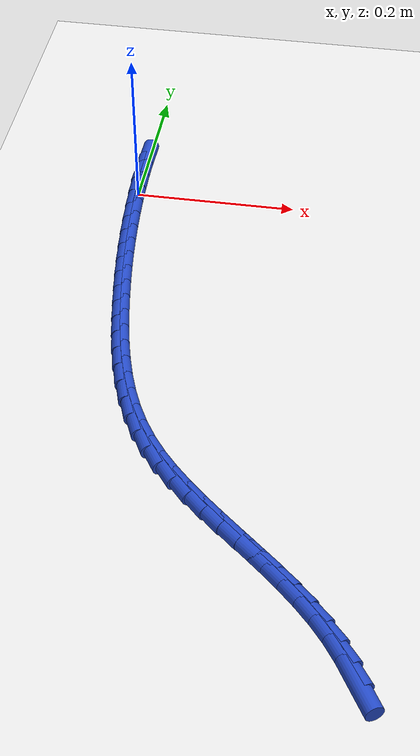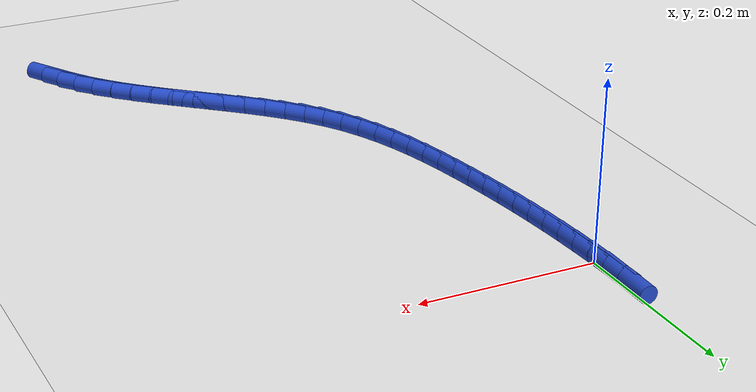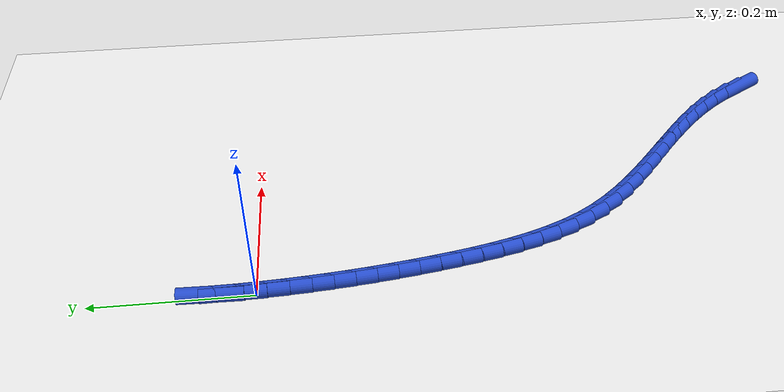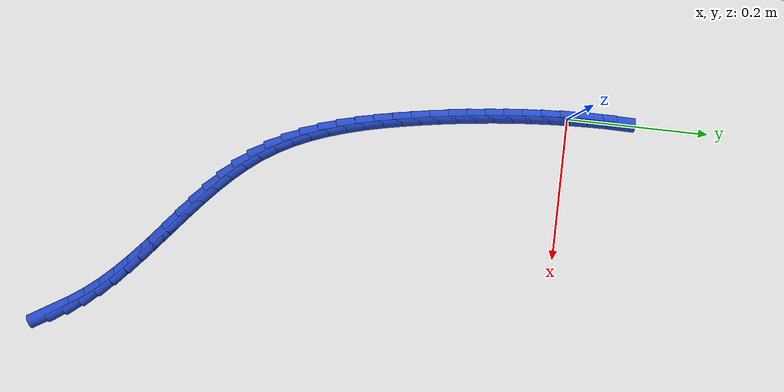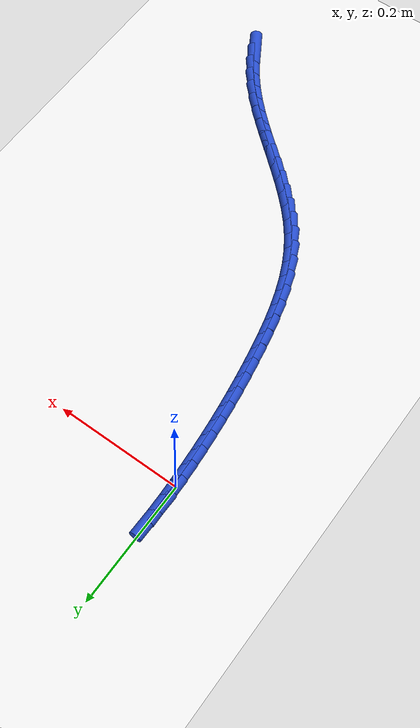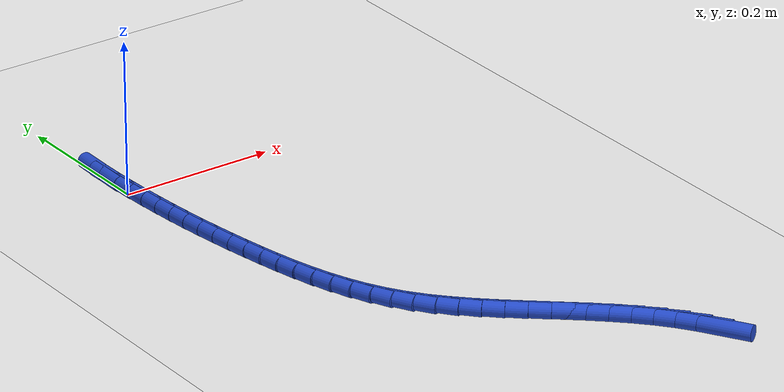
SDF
<sdf version="1.6">
 <world name="default">
  <model name="ground_plane">
   <static>1</static>
   <link name="link">
    <collision name="collision">
     <geometry><plane><normal>0 0 1</normal><size>100 100</size></plane></geometry>
     <surface><friction><ode><mu>100</mu><mu2>50</mu2></ode></friction></surface>
    </collision>
    <visual name="visual">
     <cast_shadows>0</cast_shadows>
     <geometry><plane><normal>0 0 1</normal><size>100 100</size></plane></geometry>
     <material>
      <script><uri>file://media/materials/scripts/gazebo.material</uri><name>Gazebo/WhiteGlow</name></script>
     </material>
    </visual>
   </link>
  </model>
  <model name="line">
   <link name="link_0">
    <pose>-8.253489038045903e-18 -1.3877787807814457e-17 0.01 0 1.57 -1.5352967090500393</pose>
    <collision name="collision">
     <geometry><cylinder><radius>0.01</radius><length>0.08</length></cylinder></geometry>
    </collision>
    <visual name="visual">
     <material>
      <script><name>Gazebo/Blue</name><uri>file://media/materials/scripts/gazebo.material</uri></script>
     </material>
     <geometry><cylinder><radius>0.01</radius><length>0.08</length></cylinder></geometry>
    </visual>
   </link>
   <link name="link_1">
    <pose>-0.0009395565878767836 0.02645554884280744 0.01 0 1.57 -1.5574593401496801</pose>
    <collision name="collision">
     <geometry><cylinder><radius>0.01</radius><length>0.08</length></cylinder></geometry>
    </collision>
    <visual name="visual">
     <material>
      <script><name>Gazebo/Blue</name><uri>file://media/materials/scripts/gazebo.material</uri></script>
     </material>
     <geometry><cylinder><radius>0.01</radius><length>0.08</length></cylinder></geometry>
    </visual>
   </link>
   <link name="link_2">
    <pose>-0.0012942468446371929 0.053048454402669976 0.01 0 1.57 1.554394458003969</pose>
    <collision name="collision">
     <geometry><cylinder><radius>0.01</radius><length>0.08</length></cylinder></geometry>
    </collision>
    <visual name="visual">
     <material>
      <script><name>Gazebo/Blue</name><uri>file://media/materials/scripts/gazebo.material</uri></script>
     </material>
     <geometry><cylinder><radius>0.01</radius><length>0.08</length></cylinder></geometry>
    </visual>
   </link>
   <link name="link_259">
    <pose>0.34581465690725915 -0.6885946267468258 0.01 0 1.57 -1.0302924113974803</pose>
    <collision name="collision">
     <geometry><cylinder><radius>0.01</radius><length>0.08</length></cylinder></geometry>
    </collision>
    <visual name="visual">
     <material>
      <script><name>Gazebo/Blue</name><uri>file://media/materials/scripts/gazebo.material</uri></script>
     </material>
     <geometry><cylinder><radius>0.01</radius><length>0.08</length></cylinder></geometry>
    </visual>
   </link>
   <link name="link_260">
    <pose>0.3326765935468073 -0.6667020436393337 0.01 0 1.57 -0.9647380632477216</pose>
    <collision name="collision">
     <geometry><cylinder><radius>0.01</radius><length>0.08</length></cylinder></geometry>
    </collision>
    <visual name="visual">
     <material>
      <script><name>Gazebo/Blue</name><uri>file://media/materials/scripts/gazebo.material</uri></script>
     </material>
     <geometry><cylinder><radius>0.01</radius><length>0.08</length></cylinder></geometry>
    </visual>
   </link>
   <link name="link_261">
    <pose>0.318163400508015 -0.6457615316265248 0.01 0 1.57 -0.890704095276663</pose>
    <collision name="collision">
     <geometry><cylinder><radius>0.01</radius><length>0.08</length></cylinder></geometry>
    </collision>
    <visual name="visual">
     <material>
      <script><name>Gazebo/Blue</name><uri>file://media/materials/scripts/gazebo.material</uri></script>
     </material>
     <geometry><cylinder><radius>0.01</radius><length>0.08</length></cylinder></geometry>
    </visual>
   </link>
   <link name="link_262">
    <pose>0.30209091029534024 -0.6258898533692309 0.01 0 1.57 -0.8254926919491022</pose>
    <collision name="collision">
     <geometry><cylinder><radius>0.01</radius><length>0.08</length></cylinder></geometry>
    </collision>
    <visual name="visual">
     <material>
      <script><name>Gazebo/Blue</name><uri>file://media/materials/scripts/gazebo.material</uri></script>
     </material>
     <geometry><cylinder><radius>0.01</radius><length>0.08</length></cylinder></geometry>
    </visual>
   </link>
   <link name="link_263">
    <pose>0.28462901709659094 -0.6069684050483491 0.01 0 1.57 -0.7746555607216125</pose>
    <collision name="collision">
     <geometry><cylinder><radius>0.01</radius><length>0.08</length></cylinder></geometry>
    </collision>
    <visual name="visual">
     <material>
      <script><name>Gazebo/Blue</name><uri>file://media/materials/scripts/gazebo.material</uri></script>
     </material>
     <geometry><cylinder><radius>0.01</radius><length>0.08</length></cylinder></geometry>
    </visual>
   </link>
   <link name="link_264">
    <pose>0.2660659336088343 -0.5887999292870912 0.01 0 1.57 -0.7377667619075071</pose>
    <collision name="collision">
     <geometry><cylinder><radius>0.01</radius><length>0.08</length></cylinder></geometry>
    </collision>
    <visual name="visual">
     <material>
      <script><name>Gazebo/Blue</name><uri>file://media/materials/scripts/gazebo.material</uri></script>
     </material>
     <geometry><cylinder><radius>0.01</radius><length>0.08</length></cylinder></geometry>
    </visual>
   </link>
   <link name="link_265">
    <pose>0.24668995591937123 -0.5711871132740761 0.01 0 1.57 -0.7143002379843231</pose>
    <collision name="collision">
     <geometry><cylinder><radius>0.01</radius><length>0.08</length></cylinder></geometry>
    </collision>
    <visual name="visual">
     <material>
      <script><name>Gazebo/Blue</name><uri>file://media/materials/scripts/gazebo.material</uri></script>
     </material>
     <geometry><cylinder><radius>0.01</radius><length>0.08</length></cylinder></geometry>
    </visual>
   </link>
   <link name="link_266">
    <pose>0.22678938011550065 -0.5539326441979201 0.01 0 1.57 -0.7038331571381213</pose>
    <collision name="collision">
     <geometry><cylinder><radius>0.01</radius><length>0.08</length></cylinder></geometry>
    </collision>
    <visual name="visual">
     <material>
      <script><name>Gazebo/Blue</name><uri>file://media/materials/scripts/gazebo.material</uri></script>
     </material>
     <geometry><cylinder><radius>0.01</radius><length>0.08</length></cylinder></geometry>
    </visual>
   </link>
   <link name="link_267">
    <pose>0.20665250228452356 -0.5368392092472417 0.01 0 1.57 -0.7061555491676133</pose>
    <collision name="collision">
     <geometry><cylinder><radius>0.01</radius><length>0.08</length></cylinder></geometry>
    </collision>
    <visual name="visual">
     <material>
      <script><name>Gazebo/Blue</name><uri>file://media/materials/scripts/gazebo.material</uri></script>
     </material>
     <geometry><cylinder><radius>0.01</radius><length>0.08</length></cylinder></geometry>
    </visual>
   </link>
   <link name="link_268">
    <pose>0.18656761851374032 -0.5197094956106588 0.01 0 1.57 -0.7213140231127939</pose>
    <collision name="collision">
     <geometry><cylinder><radius>0.01</radius><length>0.08</length></cylinder></geometry>
    </collision>
    <visual name="visual">
     <material>
      <script><name>Gazebo/Blue</name><uri>file://media/materials/scripts/gazebo.material</uri></script>
     </material>
     <geometry><cylinder><radius>0.01</radius><length>0.08</length></cylinder></geometry>
    </visual>
   </link>
   <link name="link_269">
    <pose>0.16682302489045112 -0.5023461904767895 0.01 0 1.57 -0.7496022929929298</pose>
    <collision name="collision">
     <geometry><cylinder><radius>0.01</radius><length>0.08</length></cylinder></geometry>
    </collision>
    <visual name="visual">
     <material>
      <script><name>Gazebo/Blue</name><uri>file://media/materials/scripts/gazebo.material</uri></script>
     </material>
     <geometry><cylinder><radius>0.01</radius><length>0.08</length></cylinder></geometry>
    </visual>
   </link>
   <link name="link_270">
    <pose>0.1477070175019563 -0.4845519810342513 0.01 0 1.57 -0.7914956311142819</pose>
    <collision name="collision">
     <geometry><cylinder><radius>0.01</radius><length>0.08</length></cylinder></geometry>
    </collision>
    <visual name="visual">
     <material>
      <script><name>Gazebo/Blue</name><uri>file://media/materials/scripts/gazebo.material</uri></script>
     </material>
     <geometry><cylinder><radius>0.01</radius><length>0.08</length></cylinder></geometry>
    </visual>
   </link>
   <link name="link_271">
    <pose>0.1295078924355562 -0.4661295544716624 0.01 0 1.57 -0.8475116336157995</pose>
    <collision name="collision">
     <geometry><cylinder><radius>0.01</radius><length>0.08</length></cylinder></geometry>
    </collision>
    <visual name="visual">
     <material>
      <script><name>Gazebo/Blue</name><uri>file://media/materials/scripts/gazebo.material</uri></script>
     </material>
     <geometry><cylinder><radius>0.01</radius><length>0.08</length></cylinder></geometry>
    </visual>
   </link>
   <link name="link_272">
    <pose>0.11251394577855103 -0.4468815979776403 0.01 0 1.57 -0.9179723346493457</pose>
    <collision name="collision">
     <geometry><cylinder><radius>0.01</radius><length>0.08</length></cylinder></geometry>
    </collision>
    <visual name="visual">
     <material>
      <script><name>Gazebo/Blue</name><uri>file://media/materials/scripts/gazebo.material</uri></script>
     </material>
     <geometry><cylinder><radius>0.01</radius><length>0.08</length></cylinder></geometry>
    </visual>
   </link>
   <link name="link_273">
    <pose>0.09701347361824116 -0.4266107987408031 0.01 0 1.57 -1.001439751083121</pose>
    <collision name="collision">
     <geometry><cylinder><radius>0.01</radius><length>0.08</length></cylinder></geometry>
    </collision>
    <visual name="visual">
     <material>
      <script><name>Gazebo/Blue</name><uri>file://media/materials/scripts/gazebo.material</uri></script>
     </material>
     <geometry><cylinder><radius>0.01</radius><length>0.08</length></cylinder></geometry>
    </visual>
   </link>
   <link name="link_274">
    <pose>0.0832704716023797 -0.4051394098380964 0.01 0 1.57 -1.0836282830549628</pose>
    <collision name="collision">
     <geometry><cylinder><radius>0.01</radius><length>0.08</length></cylinder></geometry>
    </collision>
    <visual name="visual">
     <material>
      <script><name>Gazebo/Blue</name><uri>file://media/materials/scripts/gazebo.material</uri></script>
     </material>
     <geometry><cylinder><radius>0.01</radius><length>0.08</length></cylinder></geometry>
    </visual>
   </link>
   <link name="link_275">
    <pose>0.07128028409399424 -0.38250599323362805 0.01 0 1.57 -1.155753225539312</pose>
    <collision name="collision">
     <geometry><cylinder><radius>0.01</radius><length>0.08</length></cylinder></geometry>
    </collision>
    <visual name="visual">
     <material>
      <script><name>Gazebo/Blue</name><uri>file://media/materials/scripts/gazebo.material</uri></script>
     </material>
     <geometry><cylinder><radius>0.01</radius><length>0.08</length></cylinder></geometry>
    </visual>
   </link>
   <link name="link_276">
    <pose>0.06087128582267554 -0.35888354916763654 0.01 0 1.57 -1.2178404362195177</pose>
    <collision name="collision">
     <geometry><cylinder><radius>0.01</radius><length>0.08</length></cylinder></geometry>
    </collision>
    <visual name="visual">
     <material>
      <script><name>Gazebo/Blue</name><uri>file://media/materials/scripts/gazebo.material</uri></script>
     </material>
     <geometry><cylinder><radius>0.01</radius><length>0.08</length></cylinder></geometry>
    </visual>
   </link>
   <link name="link_277">
    <pose>0.05186934071260979 -0.3344470994955685 0.01 0 1.57 -1.2703491621732725</pose>
    <collision name="collision">
     <geometry><cylinder><radius>0.01</radius><length>0.08</length></cylinder></geometry>
    </collision>
    <visual name="visual">
     <material>
      <script><name>Gazebo/Blue</name><uri>file://media/materials/scripts/gazebo.material</uri></script>
     </material>
     <geometry><cylinder><radius>0.01</radius><length>0.08</length></cylinder></geometry>
    </visual>
   </link>
   <link name="link_278">
    <pose>0.04410031268798305 -0.3093716660728708 0.01 0 1.57 -1.3138625181328172</pose>
    <collision name="collision">
     <geometry><cylinder><radius>0.01</radius><length>0.08</length></cylinder></geometry>
    </collision>
    <visual name="visual">
     <material>
      <script><name>Gazebo/Blue</name><uri>file://media/materials/scripts/gazebo.material</uri></script>
     </material>
     <geometry><cylinder><radius>0.01</radius><length>0.08</length></cylinder></geometry>
    </visual>
   </link>
   <link name="link_279">
    <pose>0.03739006567298146 -0.2838322707549901 0.01 0 1.57 -1.3489576730100459</pose>
    <collision name="collision">
     <geometry><cylinder><radius>0.01</radius><length>0.08</length></cylinder></geometry>
    </collision>
    <visual name="visual">
     <material>
      <script><name>Gazebo/Blue</name><uri>file://media/materials/scripts/gazebo.material</uri></script>
     </material>
     <geometry><cylinder><radius>0.01</radius><length>0.08</length></cylinder></geometry>
    </visual>
   </link>
   <link name="link_280">
    <pose>0.031564463591791304 -0.258003935397374 0.01 0 1.57 -1.3761212032051566</pose>
    <collision name="collision">
     <geometry><cylinder><radius>0.01</radius><length>0.08</length></cylinder></geometry>
    </collision>
    <visual name="visual">
     <material>
      <script><name>Gazebo/Blue</name><uri>file://media/materials/scripts/gazebo.material</uri></script>
     </material>
     <geometry><cylinder><radius>0.01</radius><length>0.08</length></cylinder></geometry>
    </visual>
   </link>
   <link name="link_281">
    <pose>0.026449370368598332 -0.23206168185546758 0.01 0 1.57 -1.3957464453947046</pose>
    <collision name="collision">
     <geometry><cylinder><radius>0.01</radius><length>0.08</length></cylinder></geometry>
    </collision>
    <visual name="visual">
     <material>
      <script><name>Gazebo/Blue</name><uri>file://media/materials/scripts/gazebo.material</uri></script>
     </material>
     <geometry><cylinder><radius>0.01</radius><length>0.08</length></cylinder></geometry>
    </visual>
   </link>
   <link name="link_282">
    <pose>0.021871760361566975 -0.20617901479080966 0.01 0 1.57 -1.4109303407670684</pose>
    <collision name="collision">
     <geometry><cylinder><radius>0.01</radius><length>0.08</length></cylinder></geometry>
    </collision>
    <visual name="visual">
     <material>
      <script><name>Gazebo/Blue</name><uri>file://media/materials/scripts/gazebo.material</uri></script>
     </material>
     <geometry><cylinder><radius>0.01</radius><length>0.08</length></cylinder></geometry>
    </visual>
   </link>
   <link name="link_283">
    <pose>0.017722005589350276 -0.18044281818670702 0.01 0 1.57 -1.4261102392632208</pose>
    <collision name="collision">
     <geometry><cylinder><radius>0.01</radius><length>0.08</length></cylinder></geometry>
    </collision>
    <visual name="visual">
     <material>
      <script><name>Gazebo/Blue</name><uri>file://media/materials/scripts/gazebo.material</uri></script>
     </material>
     <geometry><cylinder><radius>0.01</radius><length>0.08</length></cylinder></geometry>
    </visual>
   </link>
   <link name="link_284">
    <pose>0.013986931756089716 -0.15480819066419071 0.01 0 1.57 -1.441563330743123</pose>
    <collision name="collision">
     <geometry><cylinder><radius>0.01</radius><length>0.08</length></cylinder></geometry>
    </collision>
    <visual name="visual">
     <material>
      <script><name>Gazebo/Blue</name><uri>file://media/materials/scripts/gazebo.material</uri></script>
     </material>
     <geometry><cylinder><radius>0.01</radius><length>0.08</length></cylinder></geometry>
    </visual>
   </link>
   <link name="link_285">
    <pose>0.010661453353310214 -0.12921917907607497 0.01 0 1.57 -1.457184451176063</pose>
    <collision name="collision">
     <geometry><cylinder><radius>0.01</radius><length>0.08</length></cylinder></geometry>
    </collision>
    <visual name="visual">
     <material>
      <script><name>Gazebo/Blue</name><uri>file://media/materials/scripts/gazebo.material</uri></script>
     </material>
     <geometry><cylinder><radius>0.01</radius><length>0.08</length></cylinder></geometry>
    </visual>
   </link>
   <link name="link_286">
    <pose>0.007740484872536665 -0.10361983027517392 0.01 0 1.57 -1.4728646973048785</pose>
    <collision name="collision">
     <geometry><cylinder><radius>0.01</radius><length>0.08</length></cylinder></geometry>
    </collision>
    <visual name="visual">
     <material>
      <script><name>Gazebo/Blue</name><uri>file://media/materials/scripts/gazebo.material</uri></script>
     </material>
     <geometry><cylinder><radius>0.01</radius><length>0.08</length></cylinder></geometry>
    </visual>
   </link>
   <link name="link_287">
    <pose>0.0052189408052939635 -0.07795419111430171 0.01 0 1.57 -1.488494106244125</pose>
    <collision name="collision">
     <geometry><cylinder><radius>0.01</radius><length>0.08</length></cylinder></geometry>
    </collision>
    <visual name="visual">
     <material>
      <script><name>Gazebo/Blue</name><uri>file://media/materials/scripts/gazebo.material</uri></script>
     </material>
     <geometry><cylinder><radius>0.01</radius><length>0.08</length></cylinder></geometry>
    </visual>
   </link>
   <link name="link_288">
    <pose>0.00309173564310702 -0.05216630844627259 0.01 0 1.57 -1.5039643862490024</pose>
    <collision name="collision">
     <geometry><cylinder><radius>0.01</radius><length>0.08</length></cylinder></geometry>
    </collision>
    <visual name="visual">
     <material>
      <script><name>Gazebo/Blue</name><uri>file://media/materials/scripts/gazebo.material</uri></script>
     </material>
     <geometry><cylinder><radius>0.01</radius><length>0.08</length></cylinder></geometry>
    </visual>
   </link>
   <link name="link_289">
    <pose>0.0013537838775007293 -0.02620022912390064 0.01 0 1.57 -1.5191715492812947</pose>
    <collision name="collision">
     <geometry><cylinder><radius>0.01</radius><length>0.08</length></cylinder></geometry>
    </collision>
    <visual name="visual">
     <material>
      <script><name>Gazebo/Blue</name><uri>file://media/materials/scripts/gazebo.material</uri></script>
     </material>
     <geometry><cylinder><radius>0.01</radius><length>0.08</length></cylinder></geometry>
    </visual>
   </link>
   <link name="link_290">
    <pose>-6.112189747387031e-18 -5.551115123125783e-17 0.01 0 1.57 -1.5340183057518921</pose>
    <collision name="collision">
     <geometry><cylinder><radius>0.01</radius><length>0.08</length></cylinder></geometry>
    </collision>
    <visual name="visual">
     <material>
      <script><name>Gazebo/Blue</name><uri>file://media/materials/scripts/gazebo.material</uri></script>
     </material>
     <geometry><cylinder><radius>0.01</radius><length>0.08</length></cylinder></geometry>
    </visual>
   </link>
   <link name="link_291">
    <pose>-0.0009747014978702589 0.026490332072614135 0.01 0 1.57 -1.5484161045726685</pose>
    <collision name="collision">
     <geometry><cylinder><radius>0.01</radius><length>0.08</length></cylinder></geometry>
    </collision>
    <visual name="visual">
     <material>
      <script><name>Gazebo/Blue</name><uri>file://media/materials/scripts/gazebo.material</uri></script>
     </material>
     <geometry><cylinder><radius>0.01</radius><length>0.08</length></cylinder></geometry>
    </visual>
   </link>
  </model>
 </world>
</sdf>
